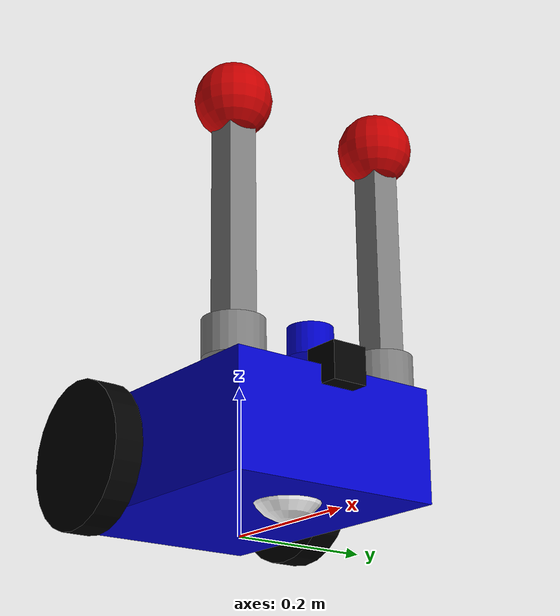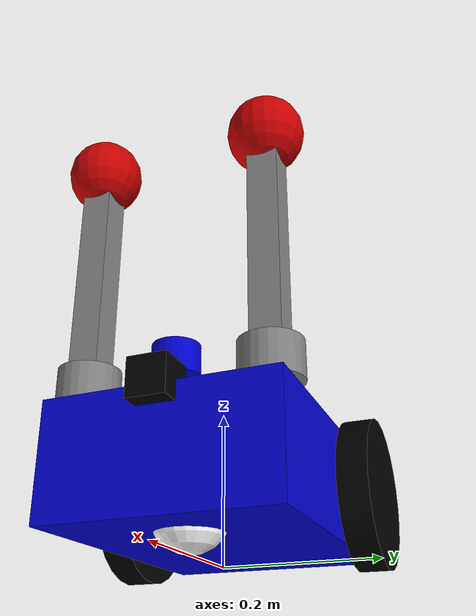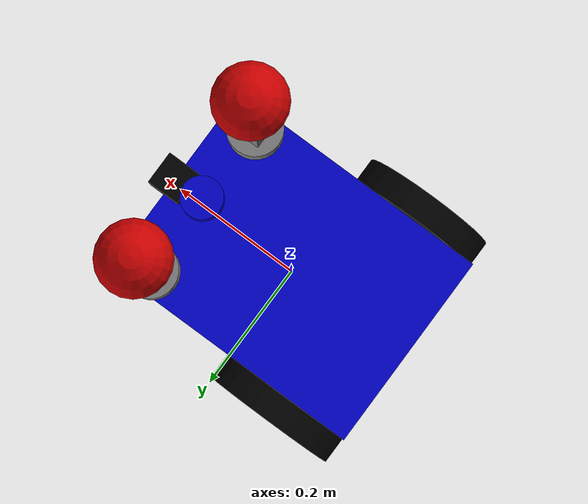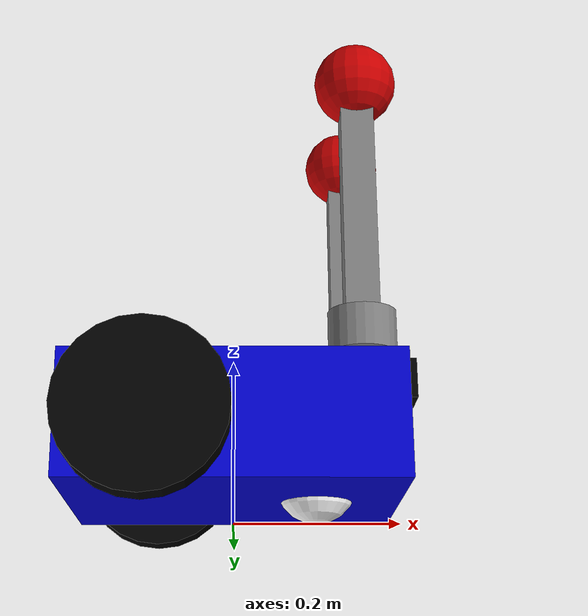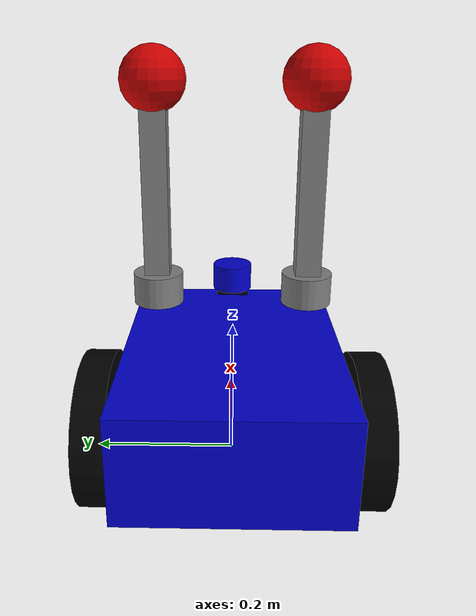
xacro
<?xml version="1.0"?>
<robot xmlns:xacro="http://www.ros.org/wiki/xacro" name="sortabot">

  <xacro:property name="mass_base" value="5.0"/>
  <xacro:property name="chassis_length" value="0.4"/>
  <xacro:property name="chassis_width" value="0.3"/>
  <xacro:property name="chassis_height" value="0.15"/>
  <xacro:property name="wheel_radius" value="0.1"/>
  <xacro:property name="wheel_width" value="0.04"/>
  <xacro:property name="wheel_offset" value="0.17"/>

  <xacro:include filename="materials.xacro" />

  <xacro:include filename="sortabot_base.xacro" />

  <xacro:include filename="sortabot_sensors.xacro" />

  <xacro:include filename="sortabot_arms.xacro" />

</robot>

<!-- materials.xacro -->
<robot xmlns:xacro="http://www.ros.org/wiki/xacro">

  <material name="blue">
    <color rgba="0 0 0.8 1"/>
  </material>

  <material name="black">
    <color rgba="0 0 0 1"/>
  </material>

  <material name="white">
    <color rgba="1 1 1 1"/>
  </material>

  <material name="red">
    <color rgba="0.8 0 0 1"/>
  </material>

  <material name="grey">
    <color rgba="0.5 0.5 0.5 1"/>
  </material>

</robot>

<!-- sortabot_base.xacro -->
<robot xmlns:xacro="http://www.ros.org/wiki/xacro">

  <!-- Constants -->
  <xacro:property name="chassis_length" value="0.4"/>
  <xacro:property name="chassis_width" value="0.3"/>
  <xacro:property name="chassis_height" value="0.15"/>
  <xacro:property name="wheel_radius" value="0.1"/>
  <xacro:property name="wheel_width" value="0.04"/>
  <xacro:property name="wheel_offset" value="0.17"/>

  <!-- Base footprint (ground projection) -->
  <link name="base_footprint"/>

  <joint name="base_footprint_joint" type="fixed">
    <parent link="base_footprint"/>
    <child link="base_link"/>
    <origin xyz="0 0 ${wheel_radius}" rpy="0 0 0"/>
  </joint>

  <!-- Base Link -->
  <link name="base_link">
    <visual>
      <geometry>
        <box size="${chassis_length} ${chassis_width} ${chassis_height}"/>
      </geometry>
      <material name="blue"/>
    </visual>
    <collision>
      <geometry>
        <box size="${chassis_length} ${chassis_width} ${chassis_height}"/>
      </geometry>
    </collision>
    <inertial>
      <mass value="1.0"/>
      <inertia ixx="0.1" ixy="0.0" ixz="0.0" iyy="0.1" iyz="0.0" izz="0.1"/>
    </inertial>
  </link>

  <!-- Wheels -->
  <link name="left_wheel">
    <visual>
      <geometry>
        <cylinder radius="${wheel_radius}" length="${wheel_width}"/>
      </geometry>
      <material name="black"/>
    </visual>
    <collision>
      <geometry>
        <cylinder radius="${wheel_radius}" length="${wheel_width}"/>
      </geometry>
    </collision>
    <inertial>
      <mass value="0.1"/>
      <inertia ixx="0.0001" ixy="0.0" ixz="0.0" iyy="0.0001" iyz="0.0" izz="0.0001"/>
    </inertial>
  </link>

  <joint name="left_wheel_joint" type="continuous">
    <parent link="base_link"/>
    <child link="left_wheel"/>
    <origin xyz="-${chassis_length/4} ${wheel_offset} 0" rpy="-${pi/2} 0 0"/>
    <axis xyz="0 0 1"/>
  </joint>

  <link name="right_wheel">
    <visual>
      <geometry>
        <cylinder radius="${wheel_radius}" length="${wheel_width}"/>
      </geometry>
      <material name="black"/>
    </visual>
    <collision>
      <geometry>
        <cylinder radius="${wheel_radius}" length="${wheel_width}"/>
      </geometry>
    </collision>
    <inertial>
      <mass value="0.1"/>
      <inertia ixx="0.0001" ixy="0.0" ixz="0.0" iyy="0.0001" iyz="0.0" izz="0.0001"/>
    </inertial>
  </link>

  <joint name="right_wheel_joint" type="continuous">
    <parent link="base_link"/>
    <child link="right_wheel"/>
    <origin xyz="-${chassis_length/4} -${wheel_offset} 0" rpy="-${pi/2} 0 0"/>
    <axis xyz="0 0 1"/>
  </joint>

  <!-- Caster -->
  <link name="caster_wheel">
    <visual>
      <geometry>
        <sphere radius="${wheel_radius/2}"/>
      </geometry>
      <material name="white"/>
    </visual>
    <collision>
      <geometry>
        <sphere radius="${wheel_radius/2}"/>
      </geometry>
    </collision>
    <inertial>
      <mass value="0.05"/>
      <inertia ixx="0.00001" ixy="0.0" ixz="0.0" iyy="0.00001" iyz="0.0" izz="0.00001"/>
    </inertial>
  </link>

  <joint name="caster_wheel_joint" type="fixed">
    <parent link="base_link"/>
    <child link="caster_wheel"/>
    <origin xyz="${chassis_length/2 - wheel_radius} 0 -${wheel_radius/2}" rpy="0 0 0"/>
  </joint>

  <!-- Gazebo Physics and Plugins -->
  <gazebo reference="base_link">
    <material>Gazebo/Blue</material>
  </gazebo>

  <gazebo reference="left_wheel">
    <material>Gazebo/Black</material>
    <mu1 value="1.0"/>
    <mu2 value="1.0"/>
    <kp value="10000000.0"/>
    <kd value="1.0"/>
    <fdir1 value="1 0 0"/>
  </gazebo>

  <gazebo reference="right_wheel">
    <material>Gazebo/Black</material>
    <mu1 value="1.0"/>
    <mu2 value="1.0"/>
    <kp value="10000000.0"/>
    <kd value="1.0"/>
    <fdir1 value="1 0 0"/>
  </gazebo>

  <gazebo reference="caster_wheel">
    <material>Gazebo/White</material>
    <mu1 value="0.001"/>
    <mu2 value="0.001"/>
  </gazebo>

  <gazebo>
    <plugin
      filename="gz-sim-diff-drive-system"
      name="gz::sim::systems::DiffDrive">
      <left_joint>left_wheel_joint</left_joint>
      <right_joint>right_wheel_joint</right_joint>
      <wheel_separation>${chassis_width + wheel_width}</wheel_separation>
      <wheel_radius>${wheel_radius}</wheel_radius>
      <odom_publish_frequency>30</odom_publish_frequency>
      <topic>cmd_vel</topic>
      <odom_topic>odom</odom_topic>
      <tf_topic>tf</tf_topic>
      <frame_id>odom</frame_id>
      <child_frame_id>base_footprint</child_frame_id>
    </plugin>

    <plugin
      filename="gz-sim-joint-state-publisher-system"
      name="gz::sim::systems::JointStatePublisher">
      <topic>joint_states</topic>
    </plugin>
  </gazebo>

</robot>

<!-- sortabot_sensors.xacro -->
<robot xmlns:xacro="http://www.ros.org/wiki/xacro">

    <link name="camera_link">
      <visual>
        <geometry>
          <box size="0.05 0.05 0.05"/>
        </geometry>
        <material name="black"/>
      </visual>
      <collision>
        <geometry>
          <box size="0.05 0.05 0.05"/>
        </geometry>
      </collision>
      <inertial>
        <mass value="0.01"/>
        <inertia ixx="0.00001" ixy="0.0" ixz="0.0" iyy="0.00001" iyz="0.0" izz="0.00001"/>
      </inertial>
    </link>

    <joint name="camera_joint" type="fixed">
      <parent link="base_link"/>
      <child link="camera_link"/>
      <origin xyz="${chassis_length/2} 0 ${chassis_height/2}" rpy="0 0 0"/>
    </joint>

    <link name="ldr_link">
      <visual>
        <geometry>
          <cylinder radius="0.03" length="0.04"/>
        </geometry>
        <material name="blue"/>
      </visual>
      <collision>
        <geometry>
          <cylinder radius="0.03" length="0.04"/>
        </geometry>
      </collision>
      <inertial>
        <mass value="0.01"/>
        <inertia ixx="0.00001" ixy="0.0" ixz="0.0" iyy="0.00001" iyz="0.0" izz="0.00001"/>
      </inertial>
    </link>

    <joint name="ldr_joint" type="fixed">
      <parent link="base_link"/>
      <child link="ldr_link"/>
      <origin xyz="${chassis_length/2 - 0.05} 0 0.12" rpy="0 0 0"/>
    </joint>

</robot>

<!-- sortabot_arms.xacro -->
<robot xmlns:xacro="http://www.ros.org/wiki/xacro">

  <xacro:macro name="arm" params="prefix color x_offset y_offset z_offset">

    <link name="${prefix}_arm_base">
      <visual>
        <geometry>
          <cylinder radius="0.04" length="0.05"/>
        </geometry>
        <material name="${color}"/>
      </visual>
      <collision>
        <geometry>
          <cylinder radius="0.04" length="0.05"/>
        </geometry>
      </collision>
      <inertial>
        <mass value="0.2"/>
        <inertia ixx="0.001" ixy="0.0" ixz="0.0" iyy="0.001" iyz="0.0" izz="0.001"/>
      </inertial>
    </link>

    <joint name="${prefix}_base_joint" type="fixed">
      <parent link="base_link"/>
      <child link="${prefix}_arm_base"/>
      <origin xyz="${x_offset} ${y_offset} ${z_offset}" rpy="0 0 0"/>
    </joint>

    <link name="${prefix}_link1">
      <visual>
        <origin xyz="0 0 0.15" rpy="0 0 0"/>
        <geometry>
          <box size="0.04 0.04 0.3"/>
        </geometry>
        <material name="${color}"/>
      </visual>
      <collision>
        <origin xyz="0 0 0.15" rpy="0 0 0"/>
        <geometry>
          <box size="0.04 0.04 0.3"/>
        </geometry>
      </collision>
      <inertial>
        <origin xyz="0 0 0.15" rpy="0 0 0"/>
        <mass value="0.3"/>
        <inertia ixx="0.001" ixy="0.0" ixz="0.0" iyy="0.001" iyz="0.0" izz="0.001"/>
      </inertial>
    </link>

    <joint name="${prefix}_joint1" type="revolute">
      <parent link="${prefix}_arm_base"/>
      <child link="${prefix}_link1"/>
      <origin xyz="0 0 0.025" rpy="0 0 0"/>
      <axis xyz="0 1 0"/>
      <limit lower="-1.57" upper="1.57" effort="10" velocity="1.0"/>
    </joint>

    <link name="${prefix}_hand">
      <visual>
        <geometry>
          <sphere radius="0.05"/>
        </geometry>
        <material name="red"/>
      </visual>
      <collision>
        <geometry>
          <sphere radius="0.05"/>
        </geometry>
      </collision>
      <inertial>
        <mass value="0.1"/>
        <inertia ixx="0.0001" ixy="0.0" ixz="0.0" iyy="0.0001" iyz="0.0" izz="0.0001"/>
      </inertial>
    </link>

    <!-- Weight Sensor (Virtual Frame) -->
    <link name="${prefix}_weight_sensor"/>

    <joint name="${prefix}_hand_joint" type="fixed">
      <parent link="${prefix}_link1"/>
      <child link="${prefix}_hand"/>
      <origin xyz="0 0 0.3" rpy="0 0 0"/>
    </joint>

    <joint name="${prefix}_weight_sensor_joint" type="fixed">
      <parent link="${prefix}_hand"/>
      <child link="${prefix}_weight_sensor"/>
      <origin xyz="0 0 0.05" rpy="0 0 0"/>
    </joint>

  </xacro:macro>

  <xacro:arm prefix="left" color="grey" x_offset="${chassis_length/2 - 0.05}" y_offset="0.12" z_offset="${chassis_height/2 + 0.025}"/>
  <xacro:arm prefix="right" color="grey" x_offset="${chassis_length/2 - 0.05}" y_offset="-0.12" z_offset="${chassis_height/2 + 0.025}"/>

</robot>
